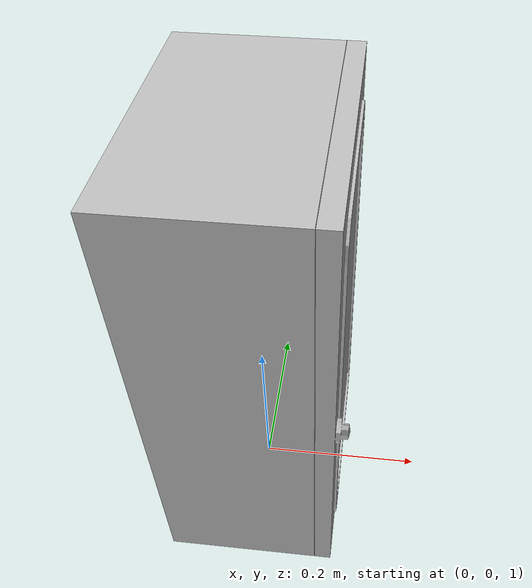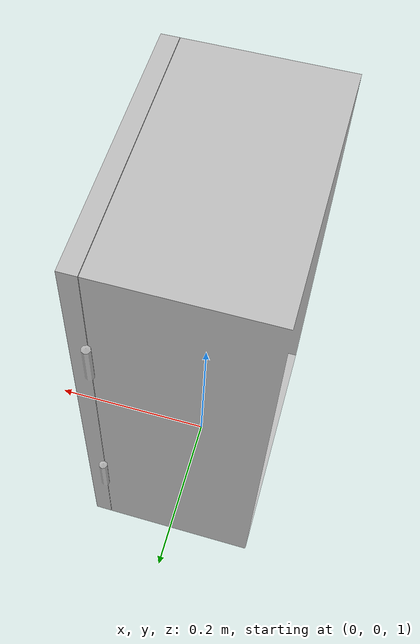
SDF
<?xml version="1.0"?>

<sdf version="1.6">
  <model name='ExtinguisherBox'>
	<static>true</static>
    <link name="body">
      <pose>0 0 1 0 0 0</pose>

      <visual name="visual">
        <geometry>
          <mesh>
            <uri>model://ExtinguisherBox/meshes/box.obj</uri>
          </mesh>
        </geometry>
      </visual>

      <collision name="collision">
        <geometry>
          <mesh>
            <uri>model://ExtinguisherBox/meshes/box.obj</uri>
          </mesh>
        </geometry>
      </collision>

    </link>
  </model>
</sdf>
